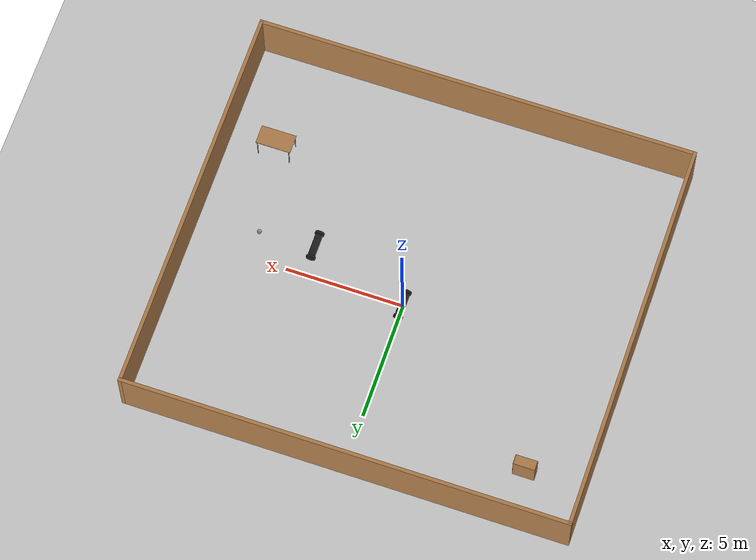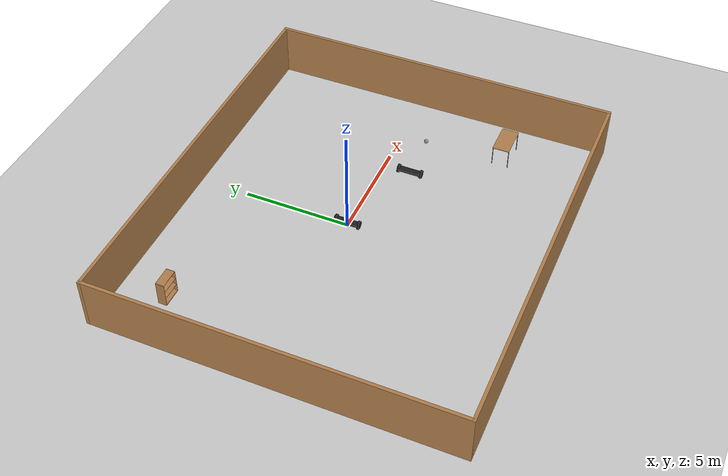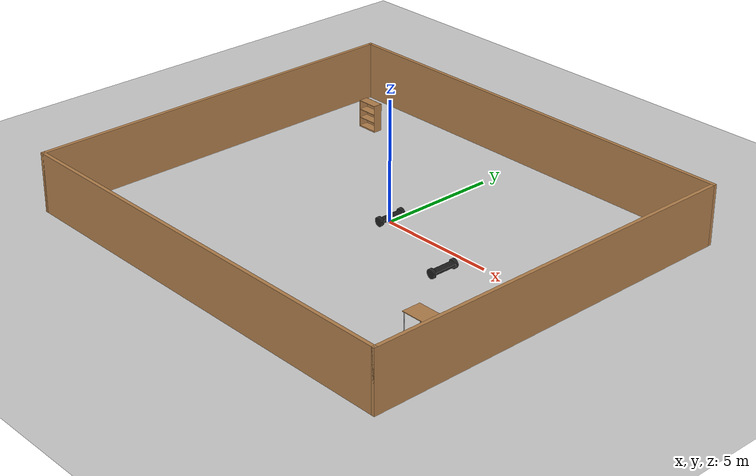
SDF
<sdf version="1.6">
 <world name="default">
  <plugin name="hello" filename="libhello.so"/>
  <light name="sun" type="directional">
   <pose>0 0 10 0 -0 0</pose>
   <diffuse>0.8 0.8 0.8 1</diffuse>
   <specular>0.2 0.2 0.2 1</specular>
   <attenuation>
    <range>1000</range>
    <constant>0.9</constant>
    <linear>0.01</linear>
    <quadratic>0.001</quadratic>
   </attenuation>
   <direction>-0.5 0.1 -0.9</direction>
  </light>
  <model name="ground_plane">
   <static>1</static>
   <link name="link">
    <collision name="collision">
     <geometry><plane><normal>0 0 1</normal><size>100 100</size></plane></geometry>
     <surface><friction><ode><mu>100</mu><mu2>50</mu2></ode></friction></surface>
    </collision>
    <visual name="visual">
     <cast_shadows>0</cast_shadows>
     <geometry><plane><normal>0 0 1</normal><size>100 100</size></plane></geometry>
     <material>
      <script><uri>file://media/materials/scripts/gazebo.material</uri><name>Gazebo/Grey</name></script>
     </material>
    </visual>
   </link>
  </model>
  <gravity>0 0 -9.8</gravity>
  <magnetic_field>6e-06 2.3e-05 -4.2e-05</magnetic_field>
  <atmosphere type="adiabatic"/>
  <physics name="default_physics" default="0" type="ode">
   <max_step_size>0.001</max_step_size>
   <real_time_factor>1</real_time_factor>
   <real_time_update_rate>1000</real_time_update_rate>
  </physics>
  <scene><ambient>0.4 0.4 0.4 1</ambient><background>0.7 0.7 0.7 1</background><shadows>1</shadows></scene>
  <spherical_coordinates>
   <surface_model>EARTH_WGS84</surface_model>
   <latitude_deg>0</latitude_deg>
   <longitude_deg>0</longitude_deg>
   <elevation>0</elevation>
   <heading_deg>0</heading_deg>
  </spherical_coordinates>
  <model name="twowheelsrobotModel">
   <link name="link_0">
    <pose>0 0 0.2 0 -0 0</pose>
    <inertial>
     <mass>1</mass>
     <inertia>
      <ixx>0.166667</ixx>
      <ixy>0</ixy>
      <ixz>0</ixz>
      <iyy>0.166667</iyy>
      <iyz>0</iyz>
      <izz>0.166667</izz>
     </inertia>
    </inertial>
    <visual name="visual">
     <geometry><box><size>0.3 1 0.1</size></box></geometry>
     <material>
      <script><uri>file://media/materials/scripts/gazebo.material</uri><name>Gazebo/FlatBlack</name></script>
     </material>
    </visual>
    <collision name="collision">
     <geometry><box><size>0.3 1 0.1</size></box></geometry>
     <surface>
      <friction>
       <ode><mu>1</mu><mu2>1</mu2><fdir1>0 0 0</fdir1><slip1>0</slip1><slip2>0</slip2></ode>
       <torsional>
        <coefficient>1</coefficient>
        <patch_radius>0</patch_radius>
        <surface_radius>0</surface_radius>
        <use_patch_radius>1</use_patch_radius>
        <ode><slip>0</slip></ode>
       </torsional>
      </friction>
      <bounce><restitution_coefficient>0</restitution_coefficient><threshold>1e+06</threshold></bounce>
      <contact>
       <collide_without_contact>0</collide_without_contact>
       <collide_without_contact_bitmask>1</collide_without_contact_bitmask>
       <collide_bitmask>1</collide_bitmask>
       <ode>
        <soft_cfm>0</soft_cfm>
        <soft_erp>0.2</soft_erp>
        <kp>1e+13</kp>
        <kd>1</kd>
        <max_vel>0.01</max_vel>
        <min_depth>0</min_depth>
       </ode>
       <bullet>
        <split_impulse>1</split_impulse>
        <split_impulse_penetration_threshold>-0.01</split_impulse_penetration_threshold>
        <soft_cfm>0</soft_cfm>
        <soft_erp>0.2</soft_erp>
        <kp>1e+13</kp>
        <kd>1</kd>
       </bullet>
      </contact>
     </surface>
    </collision>
   </link>
   <link name="link_1">
    <pose>0 -0.550019 0.2 1.5707 -0 0</pose>
    <inertial>
     <mass>1</mass>
     <inertia><ixx>0.145833</ixx><ixy>0</ixy><ixz>0</ixz><iyy>0.145833</iyy><iyz>0</iyz><izz>0.125</izz></inertia>
    </inertial>
    <visual name="visual">
     <geometry><cylinder><radius>0.2</radius><length>0.1</length></cylinder></geometry>
     <material>
      <script><uri>file://media/materials/scripts/gazebo.material</uri><name>Gazebo/FlatBlack</name></script>
     </material>
    </visual>
    <collision name="collision">
     <geometry><cylinder><radius>0.2</radius><length>0.1</length></cylinder></geometry>
     <surface>
      <friction>
       <ode><mu>1</mu><mu2>1</mu2><fdir1>0 0 0</fdir1><slip1>0</slip1><slip2>0</slip2></ode>
       <torsional>
        <coefficient>1</coefficient>
        <patch_radius>0</patch_radius>
        <surface_radius>0</surface_radius>
        <use_patch_radius>1</use_patch_radius>
        <ode><slip>0</slip></ode>
       </torsional>
      </friction>
      <bounce><restitution_coefficient>0</restitution_coefficient><threshold>1e+06</threshold></bounce>
      <contact>
       <collide_without_contact>0</collide_without_contact>
       <collide_without_contact_bitmask>1</collide_without_contact_bitmask>
       <collide_bitmask>1</collide_bitmask>
       <ode>
        <soft_cfm>0</soft_cfm>
        <soft_erp>0.2</soft_erp>
        <kp>1e+13</kp>
        <kd>1</kd>
        <max_vel>0.01</max_vel>
        <min_depth>0</min_depth>
       </ode>
       <bullet>
        <split_impulse>1</split_impulse>
        <split_impulse_penetration_threshold>-0.01</split_impulse_penetration_threshold>
        <soft_cfm>0</soft_cfm>
        <soft_erp>0.2</soft_erp>
        <kp>1e+13</kp>
        <kd>1</kd>
       </bullet>
      </contact>
     </surface>
    </collision>
   </link>
   <link name="link_1_clone">
    <pose>0 0.550019 0.2 1.5707 -0 0</pose>
    <inertial>
     <mass>1</mass>
     <inertia><ixx>0.145833</ixx><ixy>0</ixy><ixz>0</ixz><iyy>0.145833</iyy><iyz>0</iyz><izz>0.125</izz></inertia>
    </inertial>
    <visual name="visual">
     <geometry><cylinder><radius>0.2</radius><length>0.1</length></cylinder></geometry>
     <material>
      <script><uri>file://media/materials/scripts/gazebo.material</uri><name>Gazebo/FlatBlack</name></script>
     </material>
    </visual>
    <collision name="collision">
     <geometry><cylinder><radius>0.2</radius><length>0.1</length></cylinder></geometry>
     <surface>
      <friction>
       <ode><mu>1</mu><mu2>1</mu2><fdir1>0 0 0</fdir1><slip1>0</slip1><slip2>0</slip2></ode>
       <torsional>
        <coefficient>1</coefficient>
        <patch_radius>0</patch_radius>
        <surface_radius>0</surface_radius>
        <use_patch_radius>1</use_patch_radius>
        <ode><slip>0</slip></ode>
       </torsional>
      </friction>
      <bounce><restitution_coefficient>0</restitution_coefficient><threshold>1e+06</threshold></bounce>
      <contact>
       <collide_without_contact>0</collide_without_contact>
       <collide_without_contact_bitmask>1</collide_without_contact_bitmask>
       <collide_bitmask>1</collide_bitmask>
       <ode>
        <soft_cfm>0</soft_cfm>
        <soft_erp>0.2</soft_erp>
        <kp>1e+13</kp>
        <kd>1</kd>
        <max_vel>0.01</max_vel>
        <min_depth>0</min_depth>
       </ode>
       <bullet>
        <split_impulse>1</split_impulse>
        <split_impulse_penetration_threshold>-0.01</split_impulse_penetration_threshold>
        <soft_cfm>0</soft_cfm>
        <soft_erp>0.2</soft_erp>
        <kp>1e+13</kp>
        <kd>1</kd>
       </bullet>
      </contact>
     </surface>
    </collision>
   </link>
   <joint name="link_0_JOINT_0" type="revolute">
    <parent>link_0</parent>
    <child>link_1</child>
    <axis>
     <xyz>0 0 1</xyz>
     <use_parent_model_frame>0</use_parent_model_frame>
     <limit>
      <lower>-1.79769e+308</lower>
      <upper>1.79769e+308</upper>
      <effort>-1</effort>
      <velocity>-1</velocity>
     </limit>
     <dynamics>
      <spring_reference>0</spring_reference>
      <spring_stiffness>0</spring_stiffness>
      <damping>0</damping>
     </dynamics>
    </axis>
    <physics>
     <ode><limit><cfm>0</cfm><erp>0.2</erp></limit><suspension><cfm>0</cfm><erp>0.2</erp></suspension></ode>
    </physics>
   </joint>
   <joint name="link_0_JOINT_1" type="revolute">
    <parent>link_0</parent>
    <child>link_1_clone</child>
    <axis>
     <xyz>0 0 1</xyz>
     <use_parent_model_frame>0</use_parent_model_frame>
     <limit>
      <lower>-1.79769e+308</lower>
      <upper>1.79769e+308</upper>
      <effort>-1</effort>
      <velocity>-1</velocity>
     </limit>
     <dynamics>
      <spring_reference>0</spring_reference>
      <spring_stiffness>0</spring_stiffness>
      <damping>0</damping>
     </dynamics>
    </axis>
    <physics>
     <ode><limit><cfm>0</cfm><erp>0.2</erp></limit><suspension><cfm>0</cfm><erp>0.2</erp></suspension></ode>
    </physics>
   </joint>
   <static>0</static>
   <pose>0.010158 0.010132 5e-06 0 -0 0</pose>
  </model>
  <model name="twowheelsrobotModel_0">
   <link name="link_0">
    <pose>0 0 0.2 0 -0 0</pose>
    <inertial>
     <mass>1</mass>
     <inertia>
      <ixx>0.166667</ixx>
      <ixy>0</ixy>
      <ixz>0</ixz>
      <iyy>0.166667</iyy>
      <iyz>0</iyz>
      <izz>0.166667</izz>
     </inertia>
    </inertial>
    <visual name="visual">
     <geometry><box><size>0.3 1 0.1</size></box></geometry>
     <material>
      <script><uri>file://media/materials/scripts/gazebo.material</uri><name>Gazebo/FlatBlack</name></script>
     </material>
    </visual>
    <collision name="collision">
     <geometry><box><size>0.3 1 0.1</size></box></geometry>
     <surface>
      <friction>
       <ode><mu>1</mu><mu2>1</mu2><fdir1>0 0 0</fdir1><slip1>0</slip1><slip2>0</slip2></ode>
       <torsional>
        <coefficient>1</coefficient>
        <patch_radius>0</patch_radius>
        <surface_radius>0</surface_radius>
        <use_patch_radius>1</use_patch_radius>
        <ode><slip>0</slip></ode>
       </torsional>
      </friction>
      <bounce><restitution_coefficient>0</restitution_coefficient><threshold>1e+06</threshold></bounce>
      <contact>
       <collide_without_contact>0</collide_without_contact>
       <collide_without_contact_bitmask>1</collide_without_contact_bitmask>
       <collide_bitmask>1</collide_bitmask>
       <ode>
        <soft_cfm>0</soft_cfm>
        <soft_erp>0.2</soft_erp>
        <kp>1e+13</kp>
        <kd>1</kd>
        <max_vel>0.01</max_vel>
        <min_depth>0</min_depth>
       </ode>
       <bullet>
        <split_impulse>1</split_impulse>
        <split_impulse_penetration_threshold>-0.01</split_impulse_penetration_threshold>
        <soft_cfm>0</soft_cfm>
        <soft_erp>0.2</soft_erp>
        <kp>1e+13</kp>
        <kd>1</kd>
       </bullet>
      </contact>
     </surface>
    </collision>
   </link>
   <link name="link_1">
    <pose>0 -0.550019 0.2 1.5707 -0 0</pose>
    <inertial>
     <mass>1</mass>
     <inertia><ixx>0.145833</ixx><ixy>0</ixy><ixz>0</ixz><iyy>0.145833</iyy><iyz>0</iyz><izz>0.125</izz></inertia>
    </inertial>
    <visual name="visual">
     <geometry><cylinder><radius>0.2</radius><length>0.1</length></cylinder></geometry>
     <material>
      <script><uri>file://media/materials/scripts/gazebo.material</uri><name>Gazebo/FlatBlack</name></script>
     </material>
    </visual>
    <collision name="collision">
     <geometry><cylinder><radius>0.2</radius><length>0.1</length></cylinder></geometry>
     <surface>
      <friction>
       <ode><mu>1</mu><mu2>1</mu2><fdir1>0 0 0</fdir1><slip1>0</slip1><slip2>0</slip2></ode>
       <torsional>
        <coefficient>1</coefficient>
        <patch_radius>0</patch_radius>
        <surface_radius>0</surface_radius>
        <use_patch_radius>1</use_patch_radius>
        <ode><slip>0</slip></ode>
       </torsional>
      </friction>
      <bounce><restitution_coefficient>0</restitution_coefficient><threshold>1e+06</threshold></bounce>
      <contact>
       <collide_without_contact>0</collide_without_contact>
       <collide_without_contact_bitmask>1</collide_without_contact_bitmask>
       <collide_bitmask>1</collide_bitmask>
       <ode>
        <soft_cfm>0</soft_cfm>
        <soft_erp>0.2</soft_erp>
        <kp>1e+13</kp>
        <kd>1</kd>
        <max_vel>0.01</max_vel>
        <min_depth>0</min_depth>
       </ode>
       <bullet>
        <split_impulse>1</split_impulse>
        <split_impulse_penetration_threshold>-0.01</split_impulse_penetration_threshold>
        <soft_cfm>0</soft_cfm>
        <soft_erp>0.2</soft_erp>
        <kp>1e+13</kp>
        <kd>1</kd>
       </bullet>
      </contact>
     </surface>
    </collision>
   </link>
   <link name="link_1_clone">
    <pose>0 0.550019 0.2 1.5707 -0 0</pose>
    <inertial>
     <mass>1</mass>
     <inertia><ixx>0.145833</ixx><ixy>0</ixy><ixz>0</ixz><iyy>0.145833</iyy><iyz>0</iyz><izz>0.125</izz></inertia>
    </inertial>
    <visual name="visual">
     <geometry><cylinder><radius>0.2</radius><length>0.1</length></cylinder></geometry>
     <material>
      <script><uri>file://media/materials/scripts/gazebo.material</uri><name>Gazebo/FlatBlack</name></script>
     </material>
    </visual>
    <collision name="collision">
     <geometry><cylinder><radius>0.2</radius><length>0.1</length></cylinder></geometry>
     <surface>
      <friction>
       <ode><mu>1</mu><mu2>1</mu2><fdir1>0 0 0</fdir1><slip1>0</slip1><slip2>0</slip2></ode>
       <torsional>
        <coefficient>1</coefficient>
        <patch_radius>0</patch_radius>
        <surface_radius>0</surface_radius>
        <use_patch_radius>1</use_patch_radius>
        <ode><slip>0</slip></ode>
       </torsional>
      </friction>
      <bounce><restitution_coefficient>0</restitution_coefficient><threshold>1e+06</threshold></bounce>
      <contact>
       <collide_without_contact>0</collide_without_contact>
       <collide_without_contact_bitmask>1</collide_without_contact_bitmask>
       <collide_bitmask>1</collide_bitmask>
       <ode>
        <soft_cfm>0</soft_cfm>
        <soft_erp>0.2</soft_erp>
        <kp>1e+13</kp>
        <kd>1</kd>
        <max_vel>0.01</max_vel>
        <min_depth>0</min_depth>
       </ode>
       <bullet>
        <split_impulse>1</split_impulse>
        <split_impulse_penetration_threshold>-0.01</split_impulse_penetration_threshold>
        <soft_cfm>0</soft_cfm>
        <soft_erp>0.2</soft_erp>
        <kp>1e+13</kp>
        <kd>1</kd>
       </bullet>
      </contact>
     </surface>
    </collision>
   </link>
   <joint name="link_0_JOINT_0" type="revolute">
    <parent>link_0</parent>
    <child>link_1</child>
    <axis>
     <xyz>0 0 1</xyz>
     <use_parent_model_frame>0</use_parent_model_frame>
     <limit>
      <lower>-1.79769e+308</lower>
      <upper>1.79769e+308</upper>
      <effort>-1</effort>
      <velocity>-1</velocity>
     </limit>
     <dynamics>
      <spring_reference>0</spring_reference>
      <spring_stiffness>0</spring_stiffness>
      <damping>0</damping>
     </dynamics>
    </axis>
    <physics>
     <ode><limit><cfm>0</cfm><erp>0.2</erp></limit><suspension><cfm>0</cfm><erp>0.2</erp></suspension></ode>
    </physics>
   </joint>
   <joint name="link_0_JOINT_1" type="revolute">
    <parent>link_0</parent>
    <child>link_1_clone</child>
    <axis>
     <xyz>0 0 1</xyz>
     <use_parent_model_frame>0</use_parent_model_frame>
     <limit>
      <lower>-1.79769e+308</lower>
      <upper>1.79769e+308</upper>
      <effort>-1</effort>
      <velocity>-1</velocity>
     </limit>
     <dynamics>
      <spring_reference>0</spring_reference>
      <spring_stiffness>0</spring_stiffness>
      <damping>0</damping>
     </dynamics>
    </axis>
    <physics>
     <ode><limit><cfm>0</cfm><erp>0.2</erp></limit><suspension><cfm>0</cfm><erp>0.2</erp></suspension></ode>
    </physics>
   </joint>
   <static>0</static>
   <pose>4.20511 -1.30707 2e-06 4e-06 -0 0</pose>
  </model>
  <model name="my_ball">
   <link name="link_0">
    <inertial>
     <mass>1</mass>
     <inertia><ixx>0.1</ixx><ixy>0</ixy><ixz>0</ixz><iyy>0.1</iyy><iyz>0</iyz><izz>0.1</izz></inertia>
    </inertial>
    <visual name="visual">
     <geometry><sphere><radius>0.1</radius></sphere></geometry>
     <material>
      <lighting>1</lighting>
      <script><uri>file://media/materials/scripts/gazebo.material</uri><name>Gazebo/Grey</name></script>
      <shader type="pixel"><normal_map>__default__</normal_map></shader>
      <ambient>1 1 1 1</ambient>
      <diffuse>1 1 1 1</diffuse>
      <specular>1 1 1 1</specular>
      <emissive>1 1 1 1</emissive>
     </material>
    </visual>
    <collision name="collision">
     <geometry><sphere><radius>0.1</radius></sphere></geometry>
     <surface>
      <friction>
       <ode><mu>1</mu><mu2>1</mu2><fdir1>0 0 0</fdir1><slip1>0</slip1><slip2>0</slip2></ode>
       <torsional>
        <coefficient>1</coefficient>
        <patch_radius>0</patch_radius>
        <surface_radius>0</surface_radius>
        <use_patch_radius>1</use_patch_radius>
        <ode><slip>0</slip></ode>
       </torsional>
      </friction>
      <bounce><restitution_coefficient>0</restitution_coefficient><threshold>1e+06</threshold></bounce>
      <contact>
       <collide_without_contact>0</collide_without_contact>
       <collide_without_contact_bitmask>1</collide_without_contact_bitmask>
       <collide_bitmask>1</collide_bitmask>
       <ode>
        <soft_cfm>0</soft_cfm>
        <soft_erp>0.2</soft_erp>
        <kp>1e+13</kp>
        <kd>1</kd>
        <max_vel>0.01</max_vel>
        <min_depth>0</min_depth>
       </ode>
       <bullet>
        <split_impulse>1</split_impulse>
        <split_impulse_penetration_threshold>-0.01</split_impulse_penetration_threshold>
        <soft_cfm>0</soft_cfm>
        <soft_erp>0.2</soft_erp>
        <kp>1e+13</kp>
        <kd>1</kd>
       </bullet>
      </contact>
     </surface>
    </collision>
   </link>
   <static>0</static>
   <pose>6.58663 -1.20087 0.1 0 -0 0</pose>
  </model>
  <model name="Wall">
   <pose>-0.073265 -0.837112 0 0 -0 0</pose>
   <link name="Wall_18">
    <collision name="Wall_18_Collision">
     <geometry><box><size>16.75 0.15 2.5</size></box></geometry>
     <pose>0 0 1.25 0 -0 0</pose>
    </collision>
    <visual name="Wall_18_Visual">
     <pose>0 0 1.25 0 -0 0</pose>
     <geometry><box><size>16.75 0.15 2.5</size></box></geometry>
     <material>
      <script><uri>file://media/materials/scripts/gazebo.material</uri><name>Gazebo/Wood</name></script>
      <ambient>1 1 1 1</ambient>
     </material>
     <meta><layer>0</layer></meta>
    </visual>
    <pose>-9.3 0 0 0 0 -1.5708</pose>
   </link>
   <link name="Wall_19">
    <collision name="Wall_19_Collision">
     <geometry><box><size>18.75 0.15 2.5</size></box></geometry>
     <pose>0 0 1.25 0 -0 0</pose>
    </collision>
    <visual name="Wall_19_Visual">
     <pose>0 0 1.25 0 -0 0</pose>
     <geometry><box><size>18.75 0.15 2.5</size></box></geometry>
     <material>
      <script><uri>file://media/materials/scripts/gazebo.material</uri><name>Gazebo/Wood</name></script>
      <ambient>1 1 1 1</ambient>
     </material>
     <meta><layer>0</layer></meta>
    </visual>
    <pose>0 -8.3 0 0 -0 0</pose>
   </link>
   <link name="Wall_20">
    <collision name="Wall_20_Collision">
     <geometry><box><size>16.75 0.15 2.5</size></box></geometry>
     <pose>0 0 1.25 0 -0 0</pose>
    </collision>
    <visual name="Wall_20_Visual">
     <pose>0 0 1.25 0 -0 0</pose>
     <geometry><box><size>16.75 0.15 2.5</size></box></geometry>
     <material>
      <script><uri>file://media/materials/scripts/gazebo.material</uri><name>Gazebo/Wood</name></script>
      <ambient>1 1 1 1</ambient>
     </material>
     <meta><layer>0</layer></meta>
    </visual>
    <pose>9.3 0 0 0 -0 1.5708</pose>
   </link>
   <link name="Wall_21">
    <collision name="Wall_21_Collision">
     <geometry><box><size>18.75 0.15 2.5</size></box></geometry>
     <pose>0 0 1.25 0 -0 0</pose>
    </collision>
    <visual name="Wall_21_Visual">
     <pose>0 0 1.25 0 -0 0</pose>
     <geometry><box><size>18.75 0.15 2.5</size></box></geometry>
     <material>
      <script><uri>file://media/materials/scripts/gazebo.material</uri><name>Gazebo/Wood</name></script>
      <ambient>1 1 1 1</ambient>
     </material>
     <meta><layer>0</layer></meta>
    </visual>
    <pose>0 8.3 0 0 -0 3.14159</pose>
   </link>
   <static>1</static>
  </model>
  <model name="bookshelf">
   <static>1</static>
   <link name="link">
    <inertial><mass>1</mass></inertial>
    <collision name="back">
     <pose>0 0.005 0.6 0 -0 0</pose>
     <geometry><box><size>0.9 0.01 1.2</size></box></geometry>
    </collision>
    <visual name="visual1">
     <pose>0 0.005 0.6 0 -0 0</pose>
     <geometry><box><size>0.9 0.01 1.2</size></box></geometry>
     <material>
      <script><uri>file://media/materials/scripts/gazebo.material</uri><name>Gazebo/Wood</name></script>
     </material>
    </visual>
    <collision name="left_side">
     <pose>0.45 -0.195 0.6 0 -0 0</pose>
     <geometry><box><size>0.02 0.4 1.2</size></box></geometry>
    </collision>
    <visual name="visual2">
     <pose>0.45 -0.195 0.6 0 -0 0</pose>
     <geometry><box><size>0.02 0.4 1.2</size></box></geometry>
     <material>
      <script><uri>file://media/materials/scripts/gazebo.material</uri><name>Gazebo/Wood</name></script>
     </material>
    </visual>
    <collision name="right_side">
     <pose>-0.45 -0.195 0.6 0 -0 0</pose>
     <geometry><box><size>0.02 0.4 1.2</size></box></geometry>
    </collision>
    <visual name="visual3">
     <pose>-0.45 -0.195 0.6 0 -0 0</pose>
     <geometry><box><size>0.02 0.4 1.2</size></box></geometry>
     <material>
      <script><uri>file://media/materials/scripts/gazebo.material</uri><name>Gazebo/Wood</name></script>
     </material>
    </visual>
    <collision name="bottom">
     <pose>0 -0.195 0.03 0 -0 0</pose>
     <geometry><box><size>0.88 0.4 0.06</size></box></geometry>
    </collision>
    <visual name="visual4">
     <pose>0 -0.195 0.03 0 -0 0</pose>
     <geometry><box><size>0.88 0.4 0.06</size></box></geometry>
     <material>
      <script><uri>file://media/materials/scripts/gazebo.material</uri><name>Gazebo/Wood</name></script>
     </material>
    </visual>
    <collision name="top">
     <pose>0 -0.195 1.19 0 -0 0</pose>
     <geometry><box><size>0.88 0.4 0.02</size></box></geometry>
    </collision>
    <visual name="visual5">
     <pose>0 -0.195 1.19 0 -0 0</pose>
     <geometry><box><size>0.88 0.4 0.02</size></box></geometry>
     <material>
      <script><uri>file://media/materials/scripts/gazebo.material</uri><name>Gazebo/Wood</name></script>
     </material>
    </visual>
    <collision name="low_shelf">
     <pose>0 -0.195 0.43 0 -0 0</pose>
     <geometry><box><size>0.88 0.4 0.02</size></box></geometry>
    </collision>
    <visual name="visual6">
     <pose>0 -0.195 0.43 0 -0 0</pose>
     <geometry><box><size>0.88 0.4 0.02</size></box></geometry>
     <material>
      <script><uri>file://media/materials/scripts/gazebo.material</uri><name>Gazebo/Wood</name></script>
     </material>
    </visual>
    <collision name="high_shelf">
     <pose>0 -0.195 0.8 0 -0 0</pose>
     <geometry><box><size>0.88 0.4 0.02</size></box></geometry>
    </collision>
    <visual name="visual7">
     <pose>0 -0.195 0.8 0 -0 0</pose>
     <geometry><box><size>0.88 0.4 0.02</size></box></geometry>
     <material>
      <script><uri>file://media/materials/scripts/gazebo.material</uri><name>Gazebo/Wood</name></script>
     </material>
    </visual>
   </link>
   <pose>-6.86128 5.38569 0 0 -0 0</pose>
  </model>
  <model name="table">
   <static>1</static>
   <link name="link">
    <collision name="surface">
     <pose>0 0 1 0 -0 0</pose>
     <geometry><box><size>1.5 0.8 0.03</size></box></geometry>
     <surface><friction><ode><mu>0.6</mu><mu2>0.6</mu2></ode></friction></surface>
    </collision>
    <visual name="visual1">
     <pose>0 0 1 0 -0 0</pose>
     <geometry><box><size>1.5 0.8 0.03</size></box></geometry>
     <material>
      <script><uri>file://media/materials/scripts/gazebo.material</uri><name>Gazebo/Wood</name></script>
     </material>
    </visual>
    <collision name="front_left_leg">
     <pose>0.68 0.38 0.5 0 -0 0</pose>
     <geometry><cylinder><radius>0.02</radius><length>1</length></cylinder></geometry>
    </collision>
    <visual name="front_left_leg">
     <pose>0.68 0.38 0.5 0 -0 0</pose>
     <geometry><cylinder><radius>0.02</radius><length>1</length></cylinder></geometry>
     <material>
      <script><uri>file://media/materials/scripts/gazebo.material</uri><name>Gazebo/Grey</name></script>
     </material>
    </visual>
    <collision name="front_right_leg">
     <pose>0.68 -0.38 0.5 0 -0 0</pose>
     <geometry><cylinder><radius>0.02</radius><length>1</length></cylinder></geometry>
    </collision>
    <visual name="front_right_leg">
     <pose>0.68 -0.38 0.5 0 -0 0</pose>
     <geometry><cylinder><radius>0.02</radius><length>1</length></cylinder></geometry>
     <material>
      <script><uri>file://media/materials/scripts/gazebo.material</uri><name>Gazebo/Grey</name></script>
     </material>
    </visual>
    <collision name="back_right_leg">
     <pose>-0.68 -0.38 0.5 0 -0 0</pose>
     <geometry><cylinder><radius>0.02</radius><length>1</length></cylinder></geometry>
    </collision>
    <visual name="back_right_leg">
     <pose>-0.68 -0.38 0.5 0 -0 0</pose>
     <geometry><cylinder><radius>0.02</radius><length>1</length></cylinder></geometry>
     <material>
      <script><uri>file://media/materials/scripts/gazebo.material</uri><name>Gazebo/Grey</name></script>
     </material>
    </visual>
    <collision name="back_left_leg">
     <pose>-0.68 0.38 0.5 0 -0 0</pose>
     <geometry><cylinder><radius>0.02</radius><length>1</length></cylinder></geometry>
    </collision>
    <visual name="back_left_leg">
     <pose>-0.68 0.38 0.5 0 -0 0</pose>
     <geometry><cylinder><radius>0.02</radius><length>1</length></cylinder></geometry>
     <material>
      <script><uri>file://media/materials/scripts/gazebo.material</uri><name>Gazebo/Grey</name></script>
     </material>
    </visual>
   </link>
   <pose>7.1582 -4.9394 0 0 -0 0</pose>
  </model>
 </world>
</sdf>
